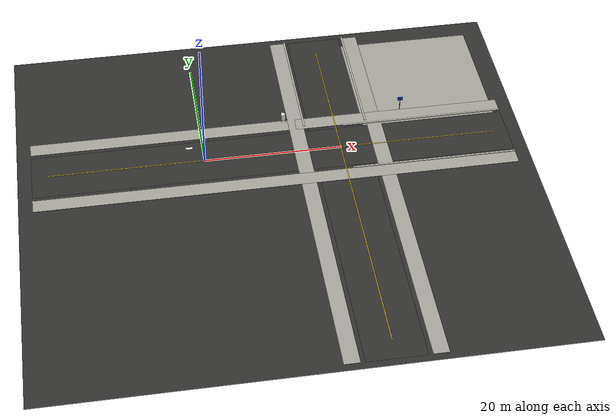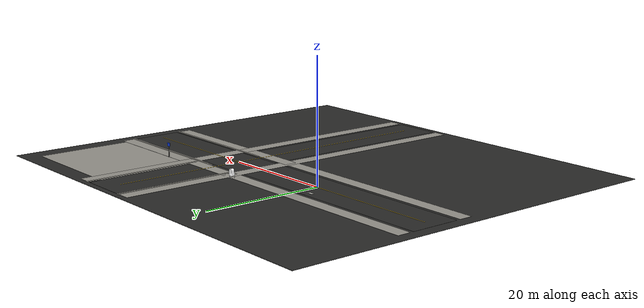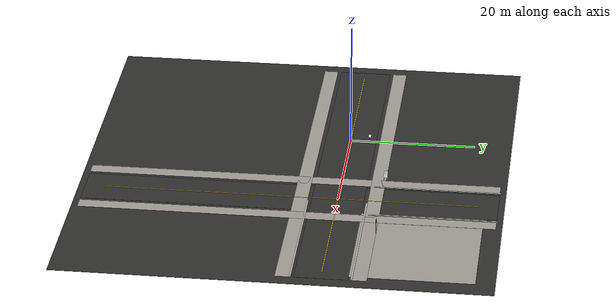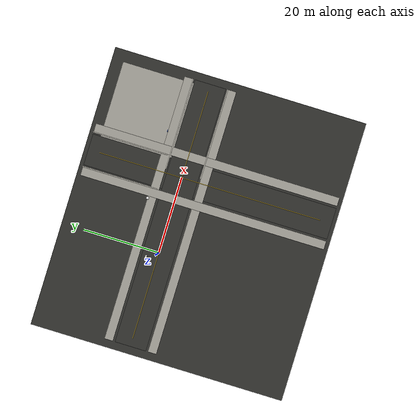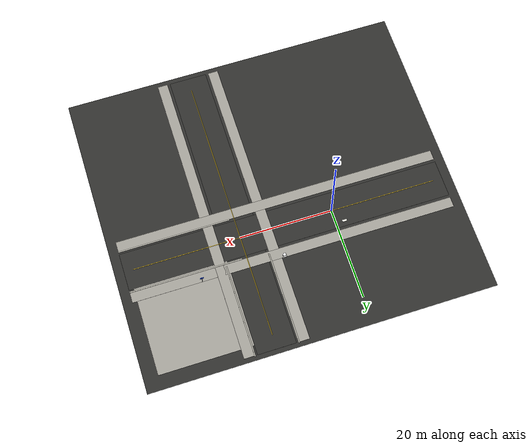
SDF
<sdf version="1.8">
 <world name="test_city">
  <model name="urban_collision_base">
   <static>1</static>
   <pose>10.000 -7.500 -0.035 0 0 0.000000</pose>
   <link name="link">
    <collision name="collision"><geometry><box><size>74.000 67.000 0.060</size></box></geometry></collision>
    <visual name="visual">
     <cast_shadows>0</cast_shadows>
     <geometry><box><size>74.000 67.000 0.060</size></box></geometry>
     <material>
      <ambient>0.18 0.18 0.17 1</ambient>
      <diffuse>0.18 0.18 0.17 1</diffuse>
      <specular>0.08 0.08 0.08 1</specular>
      <pbr>
       <metal>
        <albedo_map>model://urban_surface/materials/textures/urban_asphalt.png</albedo_map>
        <roughness>0.92</roughness>
        <metalness>0.0</metalness>
       </metal>
      </pbr>
     </material>
    </visual>
   </link>
  </model>
  <model name="northeast_commercial_plaza">
   <static>1</static>
   <pose>33.000 13.000 0.004 0 0 0.000000</pose>
   <link name="link">
    <visual name="visual">
     <cast_shadows>0</cast_shadows>
     <geometry><box><size>22.000 20.000 0.012</size></box></geometry>
     <material>
      <ambient>0.62 0.61 0.58 1</ambient>
      <diffuse>0.62 0.61 0.58 1</diffuse>
      <specular>0.08 0.08 0.08 1</specular>
      <pbr>
       <metal>
        <albedo_map>model://urban_surface/materials/textures/concrete_sidewalk.png</albedo_map>
        <roughness>0.82</roughness>
        <metalness>0.0</metalness>
       </metal>
      </pbr>
     </material>
    </visual>
   </link>
  </model>
  <model name="main_north_south_road">
   <static>1</static>
   <pose>20.000 -7.500 0.011 0 0 0.000000</pose>
   <link name="link">
    <visual name="visual">
     <cast_shadows>0</cast_shadows>
     <geometry><box><size>8.200 65.000 0.014</size></box></geometry>
     <material>
      <ambient>0.18 0.18 0.17 1</ambient>
      <diffuse>0.18 0.18 0.17 1</diffuse>
      <specular>0.08 0.08 0.08 1</specular>
      <pbr>
       <metal>
        <albedo_map>model://urban_surface/materials/textures/urban_asphalt.png</albedo_map>
        <roughness>0.92</roughness>
        <metalness>0.0</metalness>
       </metal>
      </pbr>
     </material>
    </visual>
   </link>
  </model>
  <model name="main_east_west_road">
   <static>1</static>
   <pose>10.000 0.000 0.012 0 0 0.000000</pose>
   <link name="link">
    <visual name="visual">
     <cast_shadows>0</cast_shadows>
     <geometry><box><size>70.000 8.200 0.014</size></box></geometry>
     <material>
      <ambient>0.18 0.18 0.17 1</ambient>
      <diffuse>0.18 0.18 0.17 1</diffuse>
      <specular>0.08 0.08 0.08 1</specular>
      <pbr>
       <metal>
        <albedo_map>model://urban_surface/materials/textures/urban_asphalt.png</albedo_map>
        <roughness>0.92</roughness>
        <metalness>0.0</metalness>
       </metal>
      </pbr>
     </material>
    </visual>
   </link>
  </model>
  <model name="sidewalk_w_ns">
   <static>1</static>
   <pose>14.200 -7.500 0.018 0 0 0.000000</pose>
   <link name="link">
    <visual name="visual">
     <cast_shadows>0</cast_shadows>
     <geometry><box><size>2.200 65.000 0.018</size></box></geometry>
     <material>
      <ambient>0.62 0.61 0.58 1</ambient>
      <diffuse>0.62 0.61 0.58 1</diffuse>
      <specular>0.08 0.08 0.08 1</specular>
      <pbr>
       <metal>
        <albedo_map>model://urban_surface/materials/textures/concrete_sidewalk.png</albedo_map>
        <roughness>0.82</roughness>
        <metalness>0.0</metalness>
       </metal>
      </pbr>
     </material>
    </visual>
   </link>
  </model>
  <model name="sidewalk_e_ns">
   <static>1</static>
   <pose>25.800 -7.500 0.018 0 0 0.000000</pose>
   <link name="link">
    <visual name="visual">
     <cast_shadows>0</cast_shadows>
     <geometry><box><size>2.200 65.000 0.018</size></box></geometry>
     <material>
      <ambient>0.62 0.61 0.58 1</ambient>
      <diffuse>0.62 0.61 0.58 1</diffuse>
      <specular>0.08 0.08 0.08 1</specular>
      <pbr>
       <metal>
        <albedo_map>model://urban_surface/materials/textures/concrete_sidewalk.png</albedo_map>
        <roughness>0.82</roughness>
        <metalness>0.0</metalness>
       </metal>
      </pbr>
     </material>
    </visual>
   </link>
  </model>
  <model name="sidewalk_n_ew">
   <static>1</static>
   <pose>10.000 5.800 0.018 0 0 0.000000</pose>
   <link name="link">
    <visual name="visual">
     <cast_shadows>0</cast_shadows>
     <geometry><box><size>70.000 2.200 0.018</size></box></geometry>
     <material>
      <ambient>0.62 0.61 0.58 1</ambient>
      <diffuse>0.62 0.61 0.58 1</diffuse>
      <specular>0.08 0.08 0.08 1</specular>
      <pbr>
       <metal>
        <albedo_map>model://urban_surface/materials/textures/concrete_sidewalk.png</albedo_map>
        <roughness>0.82</roughness>
        <metalness>0.0</metalness>
       </metal>
      </pbr>
     </material>
    </visual>
   </link>
  </model>
  <model name="sidewalk_s_ew">
   <static>1</static>
   <pose>10.000 -5.800 0.018 0 0 0.000000</pose>
   <link name="link">
    <visual name="visual">
     <cast_shadows>0</cast_shadows>
     <geometry><box><size>70.000 2.200 0.018</size></box></geometry>
     <material>
      <ambient>0.62 0.61 0.58 1</ambient>
      <diffuse>0.62 0.61 0.58 1</diffuse>
      <specular>0.08 0.08 0.08 1</specular>
      <pbr>
       <metal>
        <albedo_map>model://urban_surface/materials/textures/concrete_sidewalk.png</albedo_map>
        <roughness>0.82</roughness>
        <metalness>0.0</metalness>
       </metal>
      </pbr>
     </material>
    </visual>
   </link>
  </model>
  <model name="curb_w_ns_upper">
   <static>1</static>
   <pose>15.400 15.200 0.060 0 0 0.000000</pose>
   <link name="link">
    <collision name="collision"><geometry><box><size>0.250 20.000 0.120</size></box></geometry></collision>
    <visual name="visual">
     <cast_shadows>0</cast_shadows>
     <geometry><box><size>0.250 20.000 0.120</size></box></geometry>
     <material>
      <ambient>0.72 0.71 0.67 1</ambient>
      <diffuse>0.72 0.71 0.67 1</diffuse>
      <specular>0.08 0.08 0.08 1</specular>
      <pbr>
       <metal>
        <albedo_map>model://urban_surface/materials/textures/curb_concrete.png</albedo_map>
        <roughness>0.8</roughness>
        <metalness>0.0</metalness>
       </metal>
      </pbr>
     </material>
    </visual>
   </link>
  </model>
  <model name="curb_e_ns_upper">
   <static>1</static>
   <pose>24.600 15.200 0.060 0 0 0.000000</pose>
   <link name="link">
    <collision name="collision"><geometry><box><size>0.250 20.000 0.120</size></box></geometry></collision>
    <visual name="visual">
     <cast_shadows>0</cast_shadows>
     <geometry><box><size>0.250 20.000 0.120</size></box></geometry>
     <material>
      <ambient>0.72 0.71 0.67 1</ambient>
      <diffuse>0.72 0.71 0.67 1</diffuse>
      <specular>0.08 0.08 0.08 1</specular>
      <pbr>
       <metal>
        <albedo_map>model://urban_surface/materials/textures/curb_concrete.png</albedo_map>
        <roughness>0.8</roughness>
        <metalness>0.0</metalness>
       </metal>
      </pbr>
     </material>
    </visual>
   </link>
  </model>
  <model name="curb_n_ew_right">
   <static>1</static>
   <pose>33.000 4.600 0.060 0 0 0.000000</pose>
   <link name="link">
    <collision name="collision"><geometry><box><size>24.000 0.250 0.120</size></box></geometry></collision>
    <visual name="visual">
     <cast_shadows>0</cast_shadows>
     <geometry><box><size>24.000 0.250 0.120</size></box></geometry>
     <material>
      <ambient>0.72 0.71 0.67 1</ambient>
      <diffuse>0.72 0.71 0.67 1</diffuse>
      <specular>0.08 0.08 0.08 1</specular>
      <pbr>
       <metal>
        <albedo_map>model://urban_surface/materials/textures/curb_concrete.png</albedo_map>
        <roughness>0.8</roughness>
        <metalness>0.0</metalness>
       </metal>
      </pbr>
     </material>
    </visual>
   </link>
  </model>
  <model name="curb_s_ew_right">
   <static>1</static>
   <pose>33.000 -4.600 0.060 0 0 0.000000</pose>
   <link name="link">
    <collision name="collision"><geometry><box><size>24.000 0.250 0.120</size></box></geometry></collision>
    <visual name="visual">
     <cast_shadows>0</cast_shadows>
     <geometry><box><size>24.000 0.250 0.120</size></box></geometry>
     <material>
      <ambient>0.72 0.71 0.67 1</ambient>
      <diffuse>0.72 0.71 0.67 1</diffuse>
      <specular>0.08 0.08 0.08 1</specular>
      <pbr>
       <metal>
        <albedo_map>model://urban_surface/materials/textures/curb_concrete.png</albedo_map>
        <roughness>0.8</roughness>
        <metalness>0.0</metalness>
       </metal>
      </pbr>
     </material>
    </visual>
   </link>
  </model>
  <model name="ew_center_yellow_line">
   <static>1</static>
   <pose>10.000 0.000 0.033 0 0 0.000000</pose>
   <link name="link">
    <visual name="visual">
     <cast_shadows>0</cast_shadows>
     <geometry><box><size>66.000 0.120 0.010</size></box></geometry>
     <material>
      <ambient>0.95 0.78 0.12 1</ambient>
      <diffuse>0.95 0.78 0.12 1</diffuse>
      <specular>0.05 0.05 0.05 1</specular>
      <pbr><metal><roughness>0.8</roughness><metalness>0</metalness></metal></pbr>
     </material>
    </visual>
   </link>
  </model>
  <model name="ns_center_yellow_line">
   <static>1</static>
   <pose>20.000 -7.500 0.034 0 0 0.000000</pose>
   <link name="link">
    <visual name="visual">
     <cast_shadows>0</cast_shadows>
     <geometry><box><size>0.120 59.000 0.010</size></box></geometry>
     <material>
      <ambient>0.95 0.78 0.12 1</ambient>
      <diffuse>0.95 0.78 0.12 1</diffuse>
      <specular>0.05 0.05 0.05 1</specular>
      <pbr><metal><roughness>0.8</roughness><metalness>0</metalness></metal></pbr>
     </material>
    </visual>
   </link>
  </model>
  <model name="west_crosswalk_stripe_n_7">
   <static>1</static>
   <pose>-2.000 2.900 0.040 0 0 0.000000</pose>
   <link name="link">
    <visual name="visual">
     <cast_shadows>0</cast_shadows>
     <geometry><box><size>1.000 0.420 0.012</size></box></geometry>
     <material>
      <ambient>0.92 0.92 0.88 1</ambient>
      <diffuse>0.92 0.92 0.88 1</diffuse>
      <specular>0.05 0.05 0.05 1</specular>
      <pbr><metal><roughness>0.8</roughness><metalness>0</metalness></metal></pbr>
     </material>
    </visual>
   </link>
  </model>
  <include>
   <name>postbox_residential</name>
   <uri>model://postbox</uri>
   <static>1</static>
   <pose>12.500 6.800 0.000 0 0 1.570800</pose>
  </include>
  <model name="bus_stop_sign_post">
   <static>1</static>
   <pose>30.200 6.900 1.000 0 0 0.000000</pose>
   <link name="link">
    <collision name="collision"><geometry><box><size>0.080 0.080 2.000</size></box></geometry></collision>
    <visual name="visual">
     <cast_shadows>0</cast_shadows>
     <geometry><box><size>0.080 0.080 2.000</size></box></geometry>
     <material>
      <ambient>0.32 0.32 0.30 1</ambient>
      <diffuse>0.32 0.32 0.30 1</diffuse>
      <specular>0.05 0.05 0.05 1</specular>
      <pbr><metal><roughness>0.8</roughness><metalness>0</metalness></metal></pbr>
     </material>
    </visual>
   </link>
  </model>
  <model name="bus_stop_sign_plate">
   <static>1</static>
   <pose>30.200 6.900 2.100 0 0 0.000000</pose>
   <link name="link">
    <visual name="visual">
     <cast_shadows>0</cast_shadows>
     <geometry><box><size>0.750 0.080 0.550</size></box></geometry>
     <material>
      <ambient>0.05 0.23 0.85 1</ambient>
      <diffuse>0.05 0.23 0.85 1</diffuse>
      <specular>0.05 0.05 0.05 1</specular>
      <pbr><metal><roughness>0.8</roughness><metalness>0</metalness></metal></pbr>
     </material>
    </visual>
   </link>
  </model>
 </world>
</sdf>
